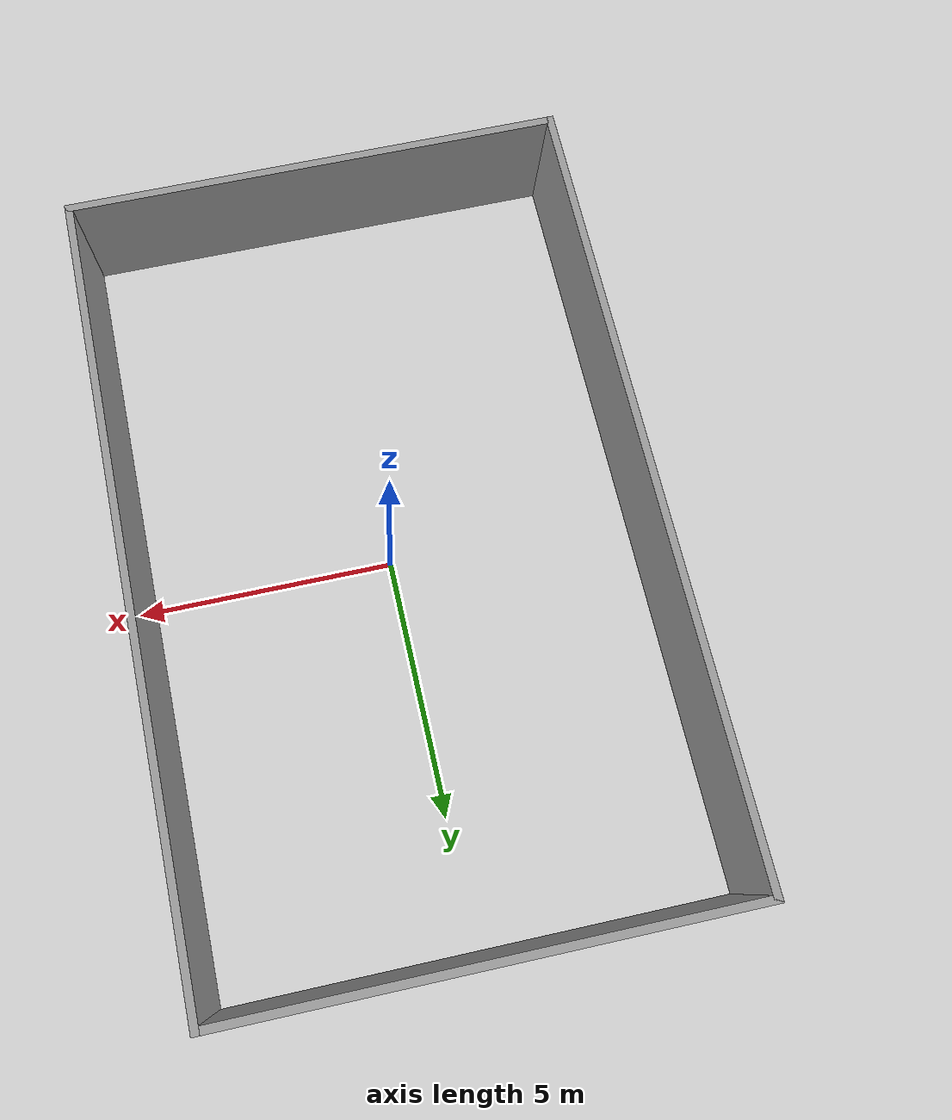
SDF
<?xml version='1.0'?>
<sdf version='1.6'>
  <model name='demo_map'>
    <pose frame=''>-0.060862 -0.074516 0 0 -0 0</pose>
    <link name='Wall_5'>
      <collision name='Wall_5_Collision'>
        <geometry>
          <box>
            <size>9.75 0.15 2.5</size>
          </box>
        </geometry>
        <pose frame=''>0 0 1.25 0 -0 0</pose>
      </collision>
      <visual name='Wall_5_Visual'>
        <pose frame=''>0 0 1.25 0 -0 0</pose>
        <geometry>
          <box>
            <size>9.75 0.15 2.5</size>
          </box>
        </geometry>
        <material>
          <script>
            <uri>file://media/materials/scripts/gazebo.material</uri>
            <name>Gazebo/Grey</name>
          </script>
          <ambient>1 1 1 1</ambient>
        </material>
      </visual>
      <pose frame=''>0 -7.55 0 0 -0 0</pose>
    </link>
    <link name='Wall_6'>
      <collision name='Wall_6_Collision'>
        <geometry>
          <box>
            <size>15.25 0.15 2.5</size>
          </box>
        </geometry>
        <pose frame=''>0 0 1.25 0 -0 0</pose>
      </collision>
      <visual name='Wall_6_Visual'>
        <pose frame=''>0 0 1.25 0 -0 0</pose>
        <geometry>
          <box>
            <size>15.25 0.15 2.5</size>
          </box>
        </geometry>
        <material>
          <script>
            <uri>file://media/materials/scripts/gazebo.material</uri>
            <name>Gazebo/Grey</name>
          </script>
          <ambient>1 1 1 1</ambient>
        </material>
      </visual>
      <pose frame=''>4.8 0 0 0 -0 1.5708</pose>
    </link>
    <link name='Wall_7'>
      <collision name='Wall_7_Collision'>
        <geometry>
          <box>
            <size>9.75 0.15 2.5</size>
          </box>
        </geometry>
        <pose frame=''>0 0 1.25 0 -0 0</pose>
      </collision>
      <visual name='Wall_7_Visual'>
        <pose frame=''>0 0 1.25 0 -0 0</pose>
        <geometry>
          <box>
            <size>9.75 0.15 2.5</size>
          </box>
        </geometry>
        <material>
          <script>
            <uri>file://media/materials/scripts/gazebo.material</uri>
            <name>Gazebo/Grey</name>
          </script>
          <ambient>1 1 1 1</ambient>
        </material>
      </visual>
      <pose frame=''>0 7.55 0 0 -0 3.14159</pose>
    </link>
    <link name='Wall_8'>
      <collision name='Wall_8_Collision'>
        <geometry>
          <box>
            <size>15.25 0.15 2.5</size>
          </box>
        </geometry>
        <pose frame=''>0 0 1.25 0 -0 0</pose>
      </collision>
      <visual name='Wall_8_Visual'>
        <pose frame=''>0 0 1.25 0 -0 0</pose>
        <geometry>
          <box>
            <size>15.25 0.15 2.5</size>
          </box>
        </geometry>
        <material>
          <script>
            <uri>file://media/materials/scripts/gazebo.material</uri>
            <name>Gazebo/Grey</name>
          </script>
          <ambient>1 1 1 1</ambient>
        </material>
      </visual>
      <pose frame=''>-4.8 0 0 0 0 -1.5708</pose>
    </link>
    <static>1</static>
  </model>
</sdf>
